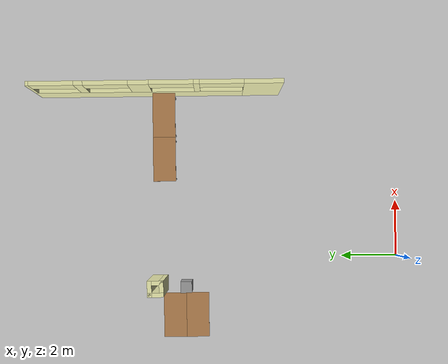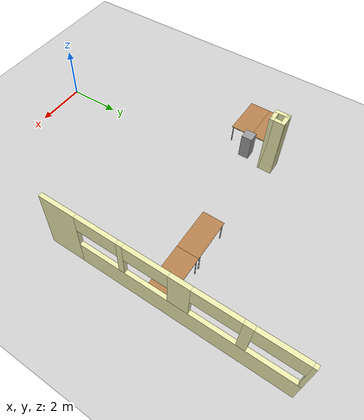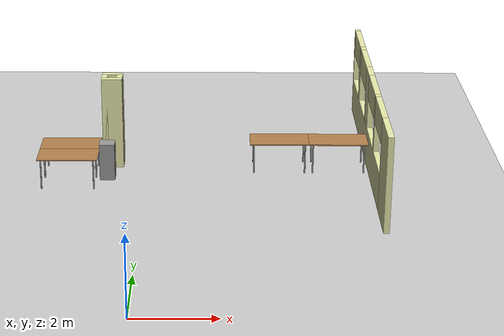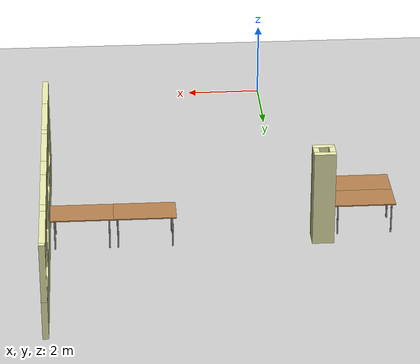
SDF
<sdf version="1.6">
 <world name="default">
  <model name="ground_plane">
   <static>1</static>
   <link name="link">
    <collision name="collision">
     <geometry><plane><normal>0 0 1</normal><size>100 100</size></plane></geometry>
     <surface><friction><ode><mu>100</mu><mu2>50</mu2></ode></friction></surface>
    </collision>
    <visual name="visual">
     <cast_shadows>0</cast_shadows>
     <geometry><plane><normal>0 0 1</normal><size>100 100</size></plane></geometry>
     <material>
      <script><uri>file://media/materials/scripts/gazebo.material</uri><name>Gazebo/Grey</name></script>
     </material>
    </visual>
   </link>
  </model>
  <model name="Building">
   <link name="Wall_34">
    <pose>6 8.58639 0 0 -0 1.5708</pose>
    <visual name="Wall_34_Visual_0">
     <pose>-3.66132 0 1.25 0 -0 0</pose>
     <geometry><box><size>1.32735 0.15 2.5</size></box></geometry>
     <material>
      <script><uri>file://media/materials/scripts/gazebo.material</uri><name>Gazebo/Grey</name></script>
      <ambient>0.92 0.92 0.68 1</ambient>
     </material>
     <meta><layer>0</layer></meta>
    </visual>
    <collision name="Wall_34_Collision_0">
     <geometry><box><size>1.32735 0.15 2.5</size></box></geometry>
     <pose>-3.66132 0 1.25 0 -0 0</pose>
    </collision>
    <visual name="Wall_34_Visual_1">
     <pose>0.663676 0 0.5 0 -0 0</pose>
     <geometry><box><size>7.32265 0.15 1</size></box></geometry>
     <material>
      <script><uri>file://media/materials/scripts/gazebo.material</uri><name>Gazebo/Grey</name></script>
      <ambient>0.92 0.92 0.68 1</ambient>
     </material>
     <meta><layer>0</layer></meta>
    </visual>
    <collision name="Wall_34_Collision_1">
     <geometry><box><size>7.32265 0.15 1</size></box></geometry>
     <pose>0.663676 0 0.5 0 -0 0</pose>
    </collision>
    <visual name="Wall_34_Visual_2">
     <pose>-1.39381 0 1.75 0 -0 0</pose>
     <geometry><box><size>0.207676 0.15 1.5</size></box></geometry>
     <material>
      <script><uri>file://media/materials/scripts/gazebo.material</uri><name>Gazebo/Grey</name></script>
      <ambient>0.92 0.92 0.68 1</ambient>
     </material>
     <meta><layer>0</layer></meta>
    </visual>
    <collision name="Wall_34_Collision_2">
     <geometry><box><size>0.207676 0.15 1.5</size></box></geometry>
     <pose>-1.39381 0 1.75 0 -0 0</pose>
    </collision>
    <visual name="Wall_34_Visual_3">
     <pose>0.560271 0 1.75 0 -0 0</pose>
     <geometry><box><size>0.700485 0.15 1.5</size></box></geometry>
     <material>
      <script><uri>file://media/materials/scripts/gazebo.material</uri><name>Gazebo/Grey</name></script>
      <ambient>0.92 0.92 0.68 1</ambient>
     </material>
     <meta><layer>0</layer></meta>
    </visual>
    <collision name="Wall_34_Collision_3">
     <geometry><box><size>0.700485 0.15 1.5</size></box></geometry>
     <pose>0.560271 0 1.75 0 -0 0</pose>
    </collision>
    <visual name="Wall_34_Visual_4">
     <pose>2.56093 0 1.75 0 -0 0</pose>
     <geometry><box><size>0.300838 0.15 1.5</size></box></geometry>
     <material>
      <script><uri>file://media/materials/scripts/gazebo.material</uri><name>Gazebo/Grey</name></script>
      <ambient>0.92 0.92 0.68 1</ambient>
     </material>
     <meta><layer>0</layer></meta>
    </visual>
    <collision name="Wall_34_Collision_4">
     <geometry><box><size>0.300838 0.15 1.5</size></box></geometry>
     <pose>2.56093 0 1.75 0 -0 0</pose>
    </collision>
    <visual name="Wall_34_Visual_5">
     <pose>4.26818 0 1.75 0 -0 0</pose>
     <geometry><box><size>0.113649 0.15 1.5</size></box></geometry>
     <material>
      <script><uri>file://media/materials/scripts/gazebo.material</uri><name>Gazebo/Grey</name></script>
      <ambient>0.92 0.92 0.68 1</ambient>
     </material>
     <meta><layer>0</layer></meta>
    </visual>
    <collision name="Wall_34_Collision_5">
     <geometry><box><size>0.113649 0.15 1.5</size></box></geometry>
     <pose>4.26818 0 1.75 0 -0 0</pose>
    </collision>
    <visual name="Wall_34_Visual_6">
     <pose>-2.24765 0 2.15 0 -0 0</pose>
     <geometry><box><size>1.5 0.15 0.7</size></box></geometry>
     <material>
      <script><uri>file://media/materials/scripts/gazebo.material</uri><name>Gazebo/Grey</name></script>
      <ambient>0.92 0.92 0.68 1</ambient>
     </material>
     <meta><layer>0</layer></meta>
    </visual>
    <collision name="Wall_34_Collision_6">
     <geometry><box><size>1.5 0.15 0.7</size></box></geometry>
     <pose>-2.24765 0 2.15 0 -0 0</pose>
    </collision>
    <visual name="Wall_34_Visual_7">
     <pose>-0.539971 0 2.15 0 -0 0</pose>
     <geometry><box><size>1.5 0.15 0.7</size></box></geometry>
     <material>
      <script><uri>file://media/materials/scripts/gazebo.material</uri><name>Gazebo/Grey</name></script>
      <ambient>0.92 0.92 0.68 1</ambient>
     </material>
     <meta><layer>0</layer></meta>
    </visual>
    <collision name="Wall_34_Collision_7">
     <geometry><box><size>1.5 0.15 0.7</size></box></geometry>
     <pose>-0.539971 0 2.15 0 -0 0</pose>
    </collision>
    <visual name="Wall_34_Visual_8">
     <pose>1.66051 0 2.15 0 -0 0</pose>
     <geometry><box><size>1.5 0.15 0.7</size></box></geometry>
     <material>
      <script><uri>file://media/materials/scripts/gazebo.material</uri><name>Gazebo/Grey</name></script>
      <ambient>0.92 0.92 0.68 1</ambient>
     </material>
     <meta><layer>0</layer></meta>
    </visual>
    <collision name="Wall_34_Collision_8">
     <geometry><box><size>1.5 0.15 0.7</size></box></geometry>
     <pose>1.66051 0 2.15 0 -0 0</pose>
    </collision>
    <visual name="Wall_34_Visual_9">
     <pose>3.46135 0 2.15 0 -0 0</pose>
     <geometry><box><size>1.5 0.15 0.7</size></box></geometry>
     <material>
      <script><uri>file://media/materials/scripts/gazebo.material</uri><name>Gazebo/Grey</name></script>
      <ambient>0.92 0.92 0.68 1</ambient>
     </material>
     <meta><layer>0</layer></meta>
    </visual>
    <collision name="Wall_34_Collision_9">
     <geometry><box><size>1.5 0.15 0.7</size></box></geometry>
     <pose>3.46135 0 2.15 0 -0 0</pose>
    </collision>
   </link>
   <link name="Wall_63">
    <collision name="Wall_63_Collision">
     <geometry><box><size>0.55 0.15 2.5</size></box></geometry>
     <pose>0 0 1.25 0 -0 0</pose>
    </collision>
    <visual name="Wall_63_Visual">
     <pose>0 0 1.25 0 -0 0</pose>
     <geometry><box><size>0.55 0.15 2.5</size></box></geometry>
     <material>
      <script><uri>file://media/materials/scripts/gazebo.material</uri><name>Gazebo/Grey</name></script>
      <ambient>0.92 0.92 0.68 1</ambient>
     </material>
     <meta><layer>0</layer></meta>
    </visual>
    <pose>-0.9 8.83639 0 0 -0 3.14159</pose>
   </link>
   <link name="Wall_65">
    <collision name="Wall_65_Collision">
     <geometry><box><size>0.55 0.15 2.5</size></box></geometry>
     <pose>0 0 1.25 0 -0 0</pose>
    </collision>
    <visual name="Wall_65_Visual">
     <pose>0 0 1.25 0 -0 0</pose>
     <geometry><box><size>0.55 0.15 2.5</size></box></geometry>
     <material>
      <script><uri>file://media/materials/scripts/gazebo.material</uri><name>Gazebo/Grey</name></script>
      <ambient>0.92 0.92 0.68 1</ambient>
     </material>
     <meta><layer>0</layer></meta>
    </visual>
    <pose>-1.1 8.63639 0 0 0 -1.5708</pose>
   </link>
   <link name="Wall_67">
    <collision name="Wall_67_Collision">
     <geometry><box><size>0.55 0.15 2.5</size></box></geometry>
     <pose>0 0 1.25 0 -0 0</pose>
    </collision>
    <visual name="Wall_67_Visual">
     <pose>0 0 1.25 0 -0 0</pose>
     <geometry><box><size>0.55 0.15 2.5</size></box></geometry>
     <material>
      <script><uri>file://media/materials/scripts/gazebo.material</uri><name>Gazebo/Grey</name></script>
      <ambient>0.92 0.92 0.68 1</ambient>
     </material>
     <meta><layer>0</layer></meta>
    </visual>
    <pose>-0.9 8.43639 0 0 -0 0</pose>
   </link>
   <link name="Wall_69">
    <collision name="Wall_69_Collision">
     <geometry><box><size>0.55 0.15 2.5</size></box></geometry>
     <pose>0 0 1.25 0 -0 0</pose>
    </collision>
    <visual name="Wall_69_Visual">
     <pose>0 0 1.25 0 -0 0</pose>
     <geometry><box><size>0.55 0.15 2.5</size></box></geometry>
     <material>
      <script><uri>file://media/materials/scripts/gazebo.material</uri><name>Gazebo/Grey</name></script>
      <ambient>0.92 0.92 0.68 1</ambient>
     </material>
     <meta><layer>0</layer></meta>
    </visual>
    <pose>-0.7 8.63639 0 0 0 -1.5708</pose>
   </link>
   <static>1</static>
  </model>
  <model name="tablealt_0_clone_0">
   <link name="link">
    <inertial>
     <mass>1</mass>
     <inertia><ixx>1</ixx><ixy>0</ixy><ixz>0</ixz><iyy>1</iyy><iyz>0</iyz><izz>1</izz></inertia>
    </inertial>
    <visual name="back_right_leg">
     <pose>-0.68 -0.38 0.4 0 -0 0</pose>
     <geometry><cylinder><radius>0.02</radius><length>0.8</length></cylinder></geometry>
     <material>
      <script><uri>file://media/materials/scripts/gazebo.material</uri><name>Gazebo/Grey</name></script>
      <shader type="pixel"><normal_map>__default__</normal_map></shader>
      <ambient>0.3 0.3 0.3 1</ambient>
      <diffuse>0.7 0.7 0.7 1</diffuse>
      <specular>0.01 0.01 0.01 1</specular>
      <emissive>0 0 0 1</emissive>
     </material>
    </visual>
    <visual name="back_left_leg">
     <pose>-0.68 0.38 0.4 0 -0 0</pose>
     <geometry><cylinder><radius>0.02</radius><length>0.8</length></cylinder></geometry>
     <material>
      <script><uri>file://media/materials/scripts/gazebo.material</uri><name>Gazebo/Grey</name></script>
      <shader type="pixel"><normal_map>__default__</normal_map></shader>
      <ambient>0.3 0.3 0.3 1</ambient>
      <diffuse>0.7 0.7 0.7 1</diffuse>
      <specular>0.01 0.01 0.01 1</specular>
      <emissive>0 0 0 1</emissive>
     </material>
    </visual>
    <visual name="visual1">
     <pose>0 0 0.8 0 -0 0</pose>
     <geometry><box><size>1.57 0.8 0.03</size></box></geometry>
     <material>
      <script><uri>file://media/materials/scripts/gazebo.material</uri><name>Gazebo/Wood</name></script>
      <shader type="pixel"><normal_map>__default__</normal_map></shader>
      <ambient>0.92 0.92 0.68 1</ambient>
      <diffuse>1 1 1 1</diffuse>
      <specular>0.2 0.2 0.2 1</specular>
      <emissive>0 0 0 1</emissive>
     </material>
    </visual>
    <visual name="front_left_leg">
     <pose>0.68 0.38 0.4 0 -0 0</pose>
     <geometry><cylinder><radius>0.02</radius><length>0.8</length></cylinder></geometry>
     <material>
      <script><uri>file://media/materials/scripts/gazebo.material</uri><name>Gazebo/Grey</name></script>
      <shader type="pixel"><normal_map>__default__</normal_map></shader>
      <ambient>0.3 0.3 0.3 1</ambient>
      <diffuse>0.7 0.7 0.7 1</diffuse>
      <specular>0.01 0.01 0.01 1</specular>
      <emissive>0 0 0 1</emissive>
     </material>
    </visual>
    <visual name="front_right_leg">
     <pose>0.68 -0.38 0.4 0 -0 0</pose>
     <geometry><cylinder><radius>0.02</radius><length>0.8</length></cylinder></geometry>
     <material>
      <script><uri>file://media/materials/scripts/gazebo.material</uri><name>Gazebo/Grey</name></script>
      <shader type="pixel"><normal_map>__default__</normal_map></shader>
      <ambient>0.3 0.3 0.3 1</ambient>
      <diffuse>0.7 0.7 0.7 1</diffuse>
      <specular>0.01 0.01 0.01 1</specular>
      <emissive>0 0 0 1</emissive>
     </material>
    </visual>
    <collision name="front_right_leg">
     <pose>0.68 -0.38 0.4 0 -0 0</pose>
     <geometry><cylinder><radius>0.02</radius><length>0.8</length></cylinder></geometry>
     <surface>
      <friction>
       <ode><mu>1</mu><mu2>1</mu2><fdir1>0 0 0</fdir1><slip1>0</slip1><slip2>0</slip2></ode>
       <torsional>
        <coefficient>1</coefficient>
        <patch_radius>0</patch_radius>
        <surface_radius>0</surface_radius>
        <use_patch_radius>1</use_patch_radius>
        <ode><slip>0</slip></ode>
       </torsional>
      </friction>
      <bounce><restitution_coefficient>0</restitution_coefficient><threshold>1e+06</threshold></bounce>
      <contact>
       <collide_without_contact>0</collide_without_contact>
       <collide_without_contact_bitmask>1</collide_without_contact_bitmask>
       <collide_bitmask>1</collide_bitmask>
       <ode>
        <soft_cfm>0</soft_cfm>
        <soft_erp>0.2</soft_erp>
        <kp>1e+13</kp>
        <kd>1</kd>
        <max_vel>0.01</max_vel>
        <min_depth>0</min_depth>
       </ode>
       <bullet>
        <split_impulse>1</split_impulse>
        <split_impulse_penetration_threshold>-0.01</split_impulse_penetration_threshold>
        <soft_cfm>0</soft_cfm>
        <soft_erp>0.2</soft_erp>
        <kp>1e+13</kp>
        <kd>1</kd>
       </bullet>
      </contact>
     </surface>
    </collision>
    <collision name="surface">
     <pose>0 0 0.8 0 -0 0</pose>
     <geometry><box><size>1.5 0.8 0.03</size></box></geometry>
     <surface>
      <friction>
       <ode><mu>0.6</mu><mu2>0.6</mu2><fdir1>0 0 0</fdir1><slip1>0</slip1><slip2>0</slip2></ode>
       <torsional>
        <coefficient>1</coefficient>
        <patch_radius>0</patch_radius>
        <surface_radius>0</surface_radius>
        <use_patch_radius>1</use_patch_radius>
        <ode><slip>0</slip></ode>
       </torsional>
      </friction>
      <bounce><restitution_coefficient>0</restitution_coefficient><threshold>1e+06</threshold></bounce>
      <contact>
       <collide_without_contact>0</collide_without_contact>
       <collide_without_contact_bitmask>1</collide_without_contact_bitmask>
       <collide_bitmask>1</collide_bitmask>
       <ode>
        <soft_cfm>0</soft_cfm>
        <soft_erp>0.2</soft_erp>
        <kp>1e+13</kp>
        <kd>1</kd>
        <max_vel>0.01</max_vel>
        <min_depth>0</min_depth>
       </ode>
       <bullet>
        <split_impulse>1</split_impulse>
        <split_impulse_penetration_threshold>-0.01</split_impulse_penetration_threshold>
        <soft_cfm>0</soft_cfm>
        <soft_erp>0.2</soft_erp>
        <kp>1e+13</kp>
        <kd>1</kd>
       </bullet>
      </contact>
     </surface>
    </collision>
    <collision name="front_left_leg">
     <pose>0.68 0.38 0.4 0 -0 0</pose>
     <geometry><cylinder><radius>0.02</radius><length>0.8</length></cylinder></geometry>
     <surface>
      <friction>
       <ode><mu>1</mu><mu2>1</mu2><fdir1>0 0 0</fdir1><slip1>0</slip1><slip2>0</slip2></ode>
       <torsional>
        <coefficient>1</coefficient>
        <patch_radius>0</patch_radius>
        <surface_radius>0</surface_radius>
        <use_patch_radius>1</use_patch_radius>
        <ode><slip>0</slip></ode>
       </torsional>
      </friction>
      <bounce><restitution_coefficient>0</restitution_coefficient><threshold>1e+06</threshold></bounce>
      <contact>
       <collide_without_contact>0</collide_without_contact>
       <collide_without_contact_bitmask>1</collide_without_contact_bitmask>
       <collide_bitmask>1</collide_bitmask>
       <ode>
        <soft_cfm>0</soft_cfm>
        <soft_erp>0.2</soft_erp>
        <kp>1e+13</kp>
        <kd>1</kd>
        <max_vel>0.01</max_vel>
        <min_depth>0</min_depth>
       </ode>
       <bullet>
        <split_impulse>1</split_impulse>
        <split_impulse_penetration_threshold>-0.01</split_impulse_penetration_threshold>
        <soft_cfm>0</soft_cfm>
        <soft_erp>0.2</soft_erp>
        <kp>1e+13</kp>
        <kd>1</kd>
       </bullet>
      </contact>
     </surface>
    </collision>
    <collision name="back_left_leg">
     <pose>-0.68 0.38 0.4 0 -0 0</pose>
     <geometry><cylinder><radius>0.02</radius><length>0.8</length></cylinder></geometry>
     <surface>
      <friction>
       <ode><mu>1</mu><mu2>1</mu2><fdir1>0 0 0</fdir1><slip1>0</slip1><slip2>0</slip2></ode>
       <torsional>
        <coefficient>1</coefficient>
        <patch_radius>0</patch_radius>
        <surface_radius>0</surface_radius>
        <use_patch_radius>1</use_patch_radius>
        <ode><slip>0</slip></ode>
       </torsional>
      </friction>
      <bounce><restitution_coefficient>0</restitution_coefficient><threshold>1e+06</threshold></bounce>
      <contact>
       <collide_without_contact>0</collide_without_contact>
       <collide_without_contact_bitmask>1</collide_without_contact_bitmask>
       <collide_bitmask>1</collide_bitmask>
       <ode>
        <soft_cfm>0</soft_cfm>
        <soft_erp>0.2</soft_erp>
        <kp>1e+13</kp>
        <kd>1</kd>
        <max_vel>0.01</max_vel>
        <min_depth>0</min_depth>
       </ode>
       <bullet>
        <split_impulse>1</split_impulse>
        <split_impulse_penetration_threshold>-0.01</split_impulse_penetration_threshold>
        <soft_cfm>0</soft_cfm>
        <soft_erp>0.2</soft_erp>
        <kp>1e+13</kp>
        <kd>1</kd>
       </bullet>
      </contact>
     </surface>
    </collision>
    <collision name="back_right_leg">
     <pose>-0.68 -0.38 0.4 0 -0 0</pose>
     <geometry><cylinder><radius>0.02</radius><length>0.8</length></cylinder></geometry>
     <surface>
      <friction>
       <ode><mu>1</mu><mu2>1</mu2><fdir1>0 0 0</fdir1><slip1>0</slip1><slip2>0</slip2></ode>
       <torsional>
        <coefficient>1</coefficient>
        <patch_radius>0</patch_radius>
        <surface_radius>0</surface_radius>
        <use_patch_radius>1</use_patch_radius>
        <ode><slip>0</slip></ode>
       </torsional>
      </friction>
      <bounce><restitution_coefficient>0</restitution_coefficient><threshold>1e+06</threshold></bounce>
      <contact>
       <collide_without_contact>0</collide_without_contact>
       <collide_without_contact_bitmask>1</collide_without_contact_bitmask>
       <collide_bitmask>1</collide_bitmask>
       <ode>
        <soft_cfm>0</soft_cfm>
        <soft_erp>0.2</soft_erp>
        <kp>1e+13</kp>
        <kd>1</kd>
        <max_vel>0.01</max_vel>
        <min_depth>0</min_depth>
       </ode>
       <bullet>
        <split_impulse>1</split_impulse>
        <split_impulse_penetration_threshold>-0.01</split_impulse_penetration_threshold>
        <soft_cfm>0</soft_cfm>
        <soft_erp>0.2</soft_erp>
        <kp>1e+13</kp>
        <kd>1</kd>
       </bullet>
      </contact>
     </surface>
    </collision>
   </link>
   <static>1</static>
   <pose>-1.99 8.07 0 0 -0 0</pose>
  </model>
  <model name="tablealt_0_clone_2">
   <link name="link">
    <inertial>
     <mass>1</mass>
     <inertia><ixx>1</ixx><ixy>0</ixy><ixz>0</ixz><iyy>1</iyy><iyz>0</iyz><izz>1</izz></inertia>
    </inertial>
    <visual name="back_right_leg">
     <pose>-0.68 -0.38 0.4 0 -0 0</pose>
     <geometry><cylinder><radius>0.02</radius><length>0.8</length></cylinder></geometry>
     <material>
      <script><uri>file://media/materials/scripts/gazebo.material</uri><name>Gazebo/Grey</name></script>
      <shader type="pixel"><normal_map>__default__</normal_map></shader>
      <ambient>0.3 0.3 0.3 1</ambient>
      <diffuse>0.7 0.7 0.7 1</diffuse>
      <specular>0.01 0.01 0.01 1</specular>
      <emissive>0 0 0 1</emissive>
     </material>
    </visual>
    <visual name="back_left_leg">
     <pose>-0.68 0.38 0.4 0 -0 0</pose>
     <geometry><cylinder><radius>0.02</radius><length>0.8</length></cylinder></geometry>
     <material>
      <script><uri>file://media/materials/scripts/gazebo.material</uri><name>Gazebo/Grey</name></script>
      <shader type="pixel"><normal_map>__default__</normal_map></shader>
      <ambient>0.3 0.3 0.3 1</ambient>
      <diffuse>0.7 0.7 0.7 1</diffuse>
      <specular>0.01 0.01 0.01 1</specular>
      <emissive>0 0 0 1</emissive>
     </material>
    </visual>
    <visual name="visual1">
     <pose>0 0 0.8 0 -0 0</pose>
     <geometry><box><size>1.57 0.8 0.03</size></box></geometry>
     <material>
      <script><uri>file://media/materials/scripts/gazebo.material</uri><name>Gazebo/Wood</name></script>
      <shader type="pixel"><normal_map>__default__</normal_map></shader>
      <ambient>0.92 0.92 0.68 1</ambient>
      <diffuse>1 1 1 1</diffuse>
      <specular>0.2 0.2 0.2 1</specular>
      <emissive>0 0 0 1</emissive>
     </material>
    </visual>
    <visual name="front_left_leg">
     <pose>0.68 0.38 0.4 0 -0 0</pose>
     <geometry><cylinder><radius>0.02</radius><length>0.8</length></cylinder></geometry>
     <material>
      <script><uri>file://media/materials/scripts/gazebo.material</uri><name>Gazebo/Grey</name></script>
      <shader type="pixel"><normal_map>__default__</normal_map></shader>
      <ambient>0.3 0.3 0.3 1</ambient>
      <diffuse>0.7 0.7 0.7 1</diffuse>
      <specular>0.01 0.01 0.01 1</specular>
      <emissive>0 0 0 1</emissive>
     </material>
    </visual>
    <visual name="front_right_leg">
     <pose>0.68 -0.38 0.4 0 -0 0</pose>
     <geometry><cylinder><radius>0.02</radius><length>0.8</length></cylinder></geometry>
     <material>
      <script><uri>file://media/materials/scripts/gazebo.material</uri><name>Gazebo/Grey</name></script>
      <shader type="pixel"><normal_map>__default__</normal_map></shader>
      <ambient>0.3 0.3 0.3 1</ambient>
      <diffuse>0.7 0.7 0.7 1</diffuse>
      <specular>0.01 0.01 0.01 1</specular>
      <emissive>0 0 0 1</emissive>
     </material>
    </visual>
    <collision name="front_right_leg">
     <pose>0.68 -0.38 0.4 0 -0 0</pose>
     <geometry><cylinder><radius>0.02</radius><length>0.8</length></cylinder></geometry>
     <surface>
      <friction>
       <ode><mu>1</mu><mu2>1</mu2><fdir1>0 0 0</fdir1><slip1>0</slip1><slip2>0</slip2></ode>
       <torsional>
        <coefficient>1</coefficient>
        <patch_radius>0</patch_radius>
        <surface_radius>0</surface_radius>
        <use_patch_radius>1</use_patch_radius>
        <ode><slip>0</slip></ode>
       </torsional>
      </friction>
      <bounce><restitution_coefficient>0</restitution_coefficient><threshold>1e+06</threshold></bounce>
      <contact>
       <collide_without_contact>0</collide_without_contact>
       <collide_without_contact_bitmask>1</collide_without_contact_bitmask>
       <collide_bitmask>1</collide_bitmask>
       <ode>
        <soft_cfm>0</soft_cfm>
        <soft_erp>0.2</soft_erp>
        <kp>1e+13</kp>
        <kd>1</kd>
        <max_vel>0.01</max_vel>
        <min_depth>0</min_depth>
       </ode>
       <bullet>
        <split_impulse>1</split_impulse>
        <split_impulse_penetration_threshold>-0.01</split_impulse_penetration_threshold>
        <soft_cfm>0</soft_cfm>
        <soft_erp>0.2</soft_erp>
        <kp>1e+13</kp>
        <kd>1</kd>
       </bullet>
      </contact>
     </surface>
    </collision>
    <collision name="surface">
     <pose>0 0 0.8 0 -0 0</pose>
     <geometry><box><size>1.5 0.8 0.03</size></box></geometry>
     <surface>
      <friction>
       <ode><mu>0.6</mu><mu2>0.6</mu2><fdir1>0 0 0</fdir1><slip1>0</slip1><slip2>0</slip2></ode>
       <torsional>
        <coefficient>1</coefficient>
        <patch_radius>0</patch_radius>
        <surface_radius>0</surface_radius>
        <use_patch_radius>1</use_patch_radius>
        <ode><slip>0</slip></ode>
       </torsional>
      </friction>
      <bounce><restitution_coefficient>0</restitution_coefficient><threshold>1e+06</threshold></bounce>
      <contact>
       <collide_without_contact>0</collide_without_contact>
       <collide_without_contact_bitmask>1</collide_without_contact_bitmask>
       <collide_bitmask>1</collide_bitmask>
       <ode>
        <soft_cfm>0</soft_cfm>
        <soft_erp>0.2</soft_erp>
        <kp>1e+13</kp>
        <kd>1</kd>
        <max_vel>0.01</max_vel>
        <min_depth>0</min_depth>
       </ode>
       <bullet>
        <split_impulse>1</split_impulse>
        <split_impulse_penetration_threshold>-0.01</split_impulse_penetration_threshold>
        <soft_cfm>0</soft_cfm>
        <soft_erp>0.2</soft_erp>
        <kp>1e+13</kp>
        <kd>1</kd>
       </bullet>
      </contact>
     </surface>
    </collision>
    <collision name="front_left_leg">
     <pose>0.68 0.38 0.4 0 -0 0</pose>
     <geometry><cylinder><radius>0.02</radius><length>0.8</length></cylinder></geometry>
     <surface>
      <friction>
       <ode><mu>1</mu><mu2>1</mu2><fdir1>0 0 0</fdir1><slip1>0</slip1><slip2>0</slip2></ode>
       <torsional>
        <coefficient>1</coefficient>
        <patch_radius>0</patch_radius>
        <surface_radius>0</surface_radius>
        <use_patch_radius>1</use_patch_radius>
        <ode><slip>0</slip></ode>
       </torsional>
      </friction>
      <bounce><restitution_coefficient>0</restitution_coefficient><threshold>1e+06</threshold></bounce>
      <contact>
       <collide_without_contact>0</collide_without_contact>
       <collide_without_contact_bitmask>1</collide_without_contact_bitmask>
       <collide_bitmask>1</collide_bitmask>
       <ode>
        <soft_cfm>0</soft_cfm>
        <soft_erp>0.2</soft_erp>
        <kp>1e+13</kp>
        <kd>1</kd>
        <max_vel>0.01</max_vel>
        <min_depth>0</min_depth>
       </ode>
       <bullet>
        <split_impulse>1</split_impulse>
        <split_impulse_penetration_threshold>-0.01</split_impulse_penetration_threshold>
        <soft_cfm>0</soft_cfm>
        <soft_erp>0.2</soft_erp>
        <kp>1e+13</kp>
        <kd>1</kd>
       </bullet>
      </contact>
     </surface>
    </collision>
    <collision name="back_left_leg">
     <pose>-0.68 0.38 0.4 0 -0 0</pose>
     <geometry><cylinder><radius>0.02</radius><length>0.8</length></cylinder></geometry>
     <surface>
      <friction>
       <ode><mu>1</mu><mu2>1</mu2><fdir1>0 0 0</fdir1><slip1>0</slip1><slip2>0</slip2></ode>
       <torsional>
        <coefficient>1</coefficient>
        <patch_radius>0</patch_radius>
        <surface_radius>0</surface_radius>
        <use_patch_radius>1</use_patch_radius>
        <ode><slip>0</slip></ode>
       </torsional>
      </friction>
      <bounce><restitution_coefficient>0</restitution_coefficient><threshold>1e+06</threshold></bounce>
      <contact>
       <collide_without_contact>0</collide_without_contact>
       <collide_without_contact_bitmask>1</collide_without_contact_bitmask>
       <collide_bitmask>1</collide_bitmask>
       <ode>
        <soft_cfm>0</soft_cfm>
        <soft_erp>0.2</soft_erp>
        <kp>1e+13</kp>
        <kd>1</kd>
        <max_vel>0.01</max_vel>
        <min_depth>0</min_depth>
       </ode>
       <bullet>
        <split_impulse>1</split_impulse>
        <split_impulse_penetration_threshold>-0.01</split_impulse_penetration_threshold>
        <soft_cfm>0</soft_cfm>
        <soft_erp>0.2</soft_erp>
        <kp>1e+13</kp>
        <kd>1</kd>
       </bullet>
      </contact>
     </surface>
    </collision>
    <collision name="back_right_leg">
     <pose>-0.68 -0.38 0.4 0 -0 0</pose>
     <geometry><cylinder><radius>0.02</radius><length>0.8</length></cylinder></geometry>
     <surface>
      <friction>
       <ode><mu>1</mu><mu2>1</mu2><fdir1>0 0 0</fdir1><slip1>0</slip1><slip2>0</slip2></ode>
       <torsional>
        <coefficient>1</coefficient>
        <patch_radius>0</patch_radius>
        <surface_radius>0</surface_radius>
        <use_patch_radius>1</use_patch_radius>
        <ode><slip>0</slip></ode>
       </torsional>
      </friction>
      <bounce><restitution_coefficient>0</restitution_coefficient><threshold>1e+06</threshold></bounce>
      <contact>
       <collide_without_contact>0</collide_without_contact>
       <collide_without_contact_bitmask>1</collide_without_contact_bitmask>
       <collide_bitmask>1</collide_bitmask>
       <ode>
        <soft_cfm>0</soft_cfm>
        <soft_erp>0.2</soft_erp>
        <kp>1e+13</kp>
        <kd>1</kd>
        <max_vel>0.01</max_vel>
        <min_depth>0</min_depth>
       </ode>
       <bullet>
        <split_impulse>1</split_impulse>
        <split_impulse_penetration_threshold>-0.01</split_impulse_penetration_threshold>
        <soft_cfm>0</soft_cfm>
        <soft_erp>0.2</soft_erp>
        <kp>1e+13</kp>
        <kd>1</kd>
       </bullet>
      </contact>
     </surface>
    </collision>
   </link>
   <static>1</static>
   <pose>-1.99 7.27 0 0 -0 0</pose>
  </model>
  <model name="tablealt_0_clone_12">
   <link name="link">
    <inertial>
     <mass>1</mass>
     <inertia><ixx>1</ixx><ixy>0</ixy><ixz>0</ixz><iyy>1</iyy><iyz>0</iyz><izz>1</izz></inertia>
    </inertial>
    <visual name="back_right_leg">
     <pose>-0.68 -0.38 0.4 0 -0 0</pose>
     <geometry><cylinder><radius>0.02</radius><length>0.8</length></cylinder></geometry>
     <material>
      <script><uri>file://media/materials/scripts/gazebo.material</uri><name>Gazebo/Grey</name></script>
      <shader type="pixel"><normal_map>__default__</normal_map></shader>
      <ambient>0.3 0.3 0.3 1</ambient>
      <diffuse>0.7 0.7 0.7 1</diffuse>
      <specular>0.01 0.01 0.01 1</specular>
      <emissive>0 0 0 1</emissive>
     </material>
    </visual>
    <visual name="back_left_leg">
     <pose>-0.68 0.38 0.4 0 -0 0</pose>
     <geometry><cylinder><radius>0.02</radius><length>0.8</length></cylinder></geometry>
     <material>
      <script><uri>file://media/materials/scripts/gazebo.material</uri><name>Gazebo/Grey</name></script>
      <shader type="pixel"><normal_map>__default__</normal_map></shader>
      <ambient>0.3 0.3 0.3 1</ambient>
      <diffuse>0.7 0.7 0.7 1</diffuse>
      <specular>0.01 0.01 0.01 1</specular>
      <emissive>0 0 0 1</emissive>
     </material>
    </visual>
    <visual name="visual1">
     <pose>0 0 0.8 0 -0 0</pose>
     <geometry><box><size>1.57 0.8 0.03</size></box></geometry>
     <material>
      <script><uri>file://media/materials/scripts/gazebo.material</uri><name>Gazebo/Wood</name></script>
      <shader type="pixel"><normal_map>__default__</normal_map></shader>
      <ambient>0.92 0.92 0.68 1</ambient>
      <diffuse>1 1 1 1</diffuse>
      <specular>0.2 0.2 0.2 1</specular>
      <emissive>0 0 0 1</emissive>
     </material>
    </visual>
    <visual name="front_left_leg">
     <pose>0.68 0.38 0.4 0 -0 0</pose>
     <geometry><cylinder><radius>0.02</radius><length>0.8</length></cylinder></geometry>
     <material>
      <script><uri>file://media/materials/scripts/gazebo.material</uri><name>Gazebo/Grey</name></script>
      <shader type="pixel"><normal_map>__default__</normal_map></shader>
      <ambient>0.3 0.3 0.3 1</ambient>
      <diffuse>0.7 0.7 0.7 1</diffuse>
      <specular>0.01 0.01 0.01 1</specular>
      <emissive>0 0 0 1</emissive>
     </material>
    </visual>
    <visual name="front_right_leg">
     <pose>0.68 -0.38 0.4 0 -0 0</pose>
     <geometry><cylinder><radius>0.02</radius><length>0.8</length></cylinder></geometry>
     <material>
      <script><uri>file://media/materials/scripts/gazebo.material</uri><name>Gazebo/Grey</name></script>
      <shader type="pixel"><normal_map>__default__</normal_map></shader>
      <ambient>0.3 0.3 0.3 1</ambient>
      <diffuse>0.7 0.7 0.7 1</diffuse>
      <specular>0.01 0.01 0.01 1</specular>
      <emissive>0 0 0 1</emissive>
     </material>
    </visual>
    <collision name="front_right_leg">
     <pose>0.68 -0.38 0.4 0 -0 0</pose>
     <geometry><cylinder><radius>0.02</radius><length>0.8</length></cylinder></geometry>
     <surface>
      <friction>
       <ode><mu>1</mu><mu2>1</mu2><fdir1>0 0 0</fdir1><slip1>0</slip1><slip2>0</slip2></ode>
       <torsional>
        <coefficient>1</coefficient>
        <patch_radius>0</patch_radius>
        <surface_radius>0</surface_radius>
        <use_patch_radius>1</use_patch_radius>
        <ode><slip>0</slip></ode>
       </torsional>
      </friction>
      <bounce><restitution_coefficient>0</restitution_coefficient><threshold>1e+06</threshold></bounce>
      <contact>
       <collide_without_contact>0</collide_without_contact>
       <collide_without_contact_bitmask>1</collide_without_contact_bitmask>
       <collide_bitmask>1</collide_bitmask>
       <ode>
        <soft_cfm>0</soft_cfm>
        <soft_erp>0.2</soft_erp>
        <kp>1e+13</kp>
        <kd>1</kd>
        <max_vel>0.01</max_vel>
        <min_depth>0</min_depth>
       </ode>
       <bullet>
        <split_impulse>1</split_impulse>
        <split_impulse_penetration_threshold>-0.01</split_impulse_penetration_threshold>
        <soft_cfm>0</soft_cfm>
        <soft_erp>0.2</soft_erp>
        <kp>1e+13</kp>
        <kd>1</kd>
       </bullet>
      </contact>
     </surface>
    </collision>
    <collision name="surface">
     <pose>0 0 0.8 0 -0 0</pose>
     <geometry><box><size>1.5 0.8 0.03</size></box></geometry>
     <surface>
      <friction>
       <ode><mu>0.6</mu><mu2>0.6</mu2><fdir1>0 0 0</fdir1><slip1>0</slip1><slip2>0</slip2></ode>
       <torsional>
        <coefficient>1</coefficient>
        <patch_radius>0</patch_radius>
        <surface_radius>0</surface_radius>
        <use_patch_radius>1</use_patch_radius>
        <ode><slip>0</slip></ode>
       </torsional>
      </friction>
      <bounce><restitution_coefficient>0</restitution_coefficient><threshold>1e+06</threshold></bounce>
      <contact>
       <collide_without_contact>0</collide_without_contact>
       <collide_without_contact_bitmask>1</collide_without_contact_bitmask>
       <collide_bitmask>1</collide_bitmask>
       <ode>
        <soft_cfm>0</soft_cfm>
        <soft_erp>0.2</soft_erp>
        <kp>1e+13</kp>
        <kd>1</kd>
        <max_vel>0.01</max_vel>
        <min_depth>0</min_depth>
       </ode>
       <bullet>
        <split_impulse>1</split_impulse>
        <split_impulse_penetration_threshold>-0.01</split_impulse_penetration_threshold>
        <soft_cfm>0</soft_cfm>
        <soft_erp>0.2</soft_erp>
        <kp>1e+13</kp>
        <kd>1</kd>
       </bullet>
      </contact>
     </surface>
    </collision>
    <collision name="front_left_leg">
     <pose>0.68 0.38 0.4 0 -0 0</pose>
     <geometry><cylinder><radius>0.02</radius><length>0.8</length></cylinder></geometry>
     <surface>
      <friction>
       <ode><mu>1</mu><mu2>1</mu2><fdir1>0 0 0</fdir1><slip1>0</slip1><slip2>0</slip2></ode>
       <torsional>
        <coefficient>1</coefficient>
        <patch_radius>0</patch_radius>
        <surface_radius>0</surface_radius>
        <use_patch_radius>1</use_patch_radius>
        <ode><slip>0</slip></ode>
       </torsional>
      </friction>
      <bounce><restitution_coefficient>0</restitution_coefficient><threshold>1e+06</threshold></bounce>
      <contact>
       <collide_without_contact>0</collide_without_contact>
       <collide_without_contact_bitmask>1</collide_without_contact_bitmask>
       <collide_bitmask>1</collide_bitmask>
       <ode>
        <soft_cfm>0</soft_cfm>
        <soft_erp>0.2</soft_erp>
        <kp>1e+13</kp>
        <kd>1</kd>
        <max_vel>0.01</max_vel>
        <min_depth>0</min_depth>
       </ode>
       <bullet>
        <split_impulse>1</split_impulse>
        <split_impulse_penetration_threshold>-0.01</split_impulse_penetration_threshold>
        <soft_cfm>0</soft_cfm>
        <soft_erp>0.2</soft_erp>
        <kp>1e+13</kp>
        <kd>1</kd>
       </bullet>
      </contact>
     </surface>
    </collision>
    <collision name="back_left_leg">
     <pose>-0.68 0.38 0.4 0 -0 0</pose>
     <geometry><cylinder><radius>0.02</radius><length>0.8</length></cylinder></geometry>
     <surface>
      <friction>
       <ode><mu>1</mu><mu2>1</mu2><fdir1>0 0 0</fdir1><slip1>0</slip1><slip2>0</slip2></ode>
       <torsional>
        <coefficient>1</coefficient>
        <patch_radius>0</patch_radius>
        <surface_radius>0</surface_radius>
        <use_patch_radius>1</use_patch_radius>
        <ode><slip>0</slip></ode>
       </torsional>
      </friction>
      <bounce><restitution_coefficient>0</restitution_coefficient><threshold>1e+06</threshold></bounce>
      <contact>
       <collide_without_contact>0</collide_without_contact>
       <collide_without_contact_bitmask>1</collide_without_contact_bitmask>
       <collide_bitmask>1</collide_bitmask>
       <ode>
        <soft_cfm>0</soft_cfm>
        <soft_erp>0.2</soft_erp>
        <kp>1e+13</kp>
        <kd>1</kd>
        <max_vel>0.01</max_vel>
        <min_depth>0</min_depth>
       </ode>
       <bullet>
        <split_impulse>1</split_impulse>
        <split_impulse_penetration_threshold>-0.01</split_impulse_penetration_threshold>
        <soft_cfm>0</soft_cfm>
        <soft_erp>0.2</soft_erp>
        <kp>1e+13</kp>
        <kd>1</kd>
       </bullet>
      </contact>
     </surface>
    </collision>
    <collision name="back_right_leg">
     <pose>-0.68 -0.38 0.4 0 -0 0</pose>
     <geometry><cylinder><radius>0.02</radius><length>0.8</length></cylinder></geometry>
     <surface>
      <friction>
       <ode><mu>1</mu><mu2>1</mu2><fdir1>0 0 0</fdir1><slip1>0</slip1><slip2>0</slip2></ode>
       <torsional>
        <coefficient>1</coefficient>
        <patch_radius>0</patch_radius>
        <surface_radius>0</surface_radius>
        <use_patch_radius>1</use_patch_radius>
        <ode><slip>0</slip></ode>
       </torsional>
      </friction>
      <bounce><restitution_coefficient>0</restitution_coefficient><threshold>1e+06</threshold></bounce>
      <contact>
       <collide_without_contact>0</collide_without_contact>
       <collide_without_contact_bitmask>1</collide_without_contact_bitmask>
       <collide_bitmask>1</collide_bitmask>
       <ode>
        <soft_cfm>0</soft_cfm>
        <soft_erp>0.2</soft_erp>
        <kp>1e+13</kp>
        <kd>1</kd>
        <max_vel>0.01</max_vel>
        <min_depth>0</min_depth>
       </ode>
       <bullet>
        <split_impulse>1</split_impulse>
        <split_impulse_penetration_threshold>-0.01</split_impulse_penetration_threshold>
        <soft_cfm>0</soft_cfm>
        <soft_erp>0.2</soft_erp>
        <kp>1e+13</kp>
        <kd>1</kd>
       </bullet>
      </contact>
     </surface>
    </collision>
   </link>
   <static>1</static>
   <pose>3.55 8.4 0 0 -0 0</pose>
  </model>
  <model name="tablealt_0_clone_13">
   <link name="link">
    <inertial>
     <mass>1</mass>
     <inertia><ixx>1</ixx><ixy>0</ixy><ixz>0</ixz><iyy>1</iyy><iyz>0</iyz><izz>1</izz></inertia>
    </inertial>
    <visual name="back_right_leg">
     <pose>-0.68 -0.38 0.4 0 -0 0</pose>
     <geometry><cylinder><radius>0.02</radius><length>0.8</length></cylinder></geometry>
     <material>
      <script><uri>file://media/materials/scripts/gazebo.material</uri><name>Gazebo/Grey</name></script>
      <shader type="pixel"><normal_map>__default__</normal_map></shader>
      <ambient>0.3 0.3 0.3 1</ambient>
      <diffuse>0.7 0.7 0.7 1</diffuse>
      <specular>0.01 0.01 0.01 1</specular>
      <emissive>0 0 0 1</emissive>
     </material>
    </visual>
    <visual name="back_left_leg">
     <pose>-0.68 0.38 0.4 0 -0 0</pose>
     <geometry><cylinder><radius>0.02</radius><length>0.8</length></cylinder></geometry>
     <material>
      <script><uri>file://media/materials/scripts/gazebo.material</uri><name>Gazebo/Grey</name></script>
      <shader type="pixel"><normal_map>__default__</normal_map></shader>
      <ambient>0.3 0.3 0.3 1</ambient>
      <diffuse>0.7 0.7 0.7 1</diffuse>
      <specular>0.01 0.01 0.01 1</specular>
      <emissive>0 0 0 1</emissive>
     </material>
    </visual>
    <visual name="visual1">
     <pose>0 0 0.8 0 -0 0</pose>
     <geometry><box><size>1.57 0.8 0.03</size></box></geometry>
     <material>
      <script><uri>file://media/materials/scripts/gazebo.material</uri><name>Gazebo/Wood</name></script>
      <shader type="pixel"><normal_map>__default__</normal_map></shader>
      <ambient>0.92 0.92 0.68 1</ambient>
      <diffuse>1 1 1 1</diffuse>
      <specular>0.2 0.2 0.2 1</specular>
      <emissive>0 0 0 1</emissive>
     </material>
    </visual>
    <visual name="front_left_leg">
     <pose>0.68 0.38 0.4 0 -0 0</pose>
     <geometry><cylinder><radius>0.02</radius><length>0.8</length></cylinder></geometry>
     <material>
      <script><uri>file://media/materials/scripts/gazebo.material</uri><name>Gazebo/Grey</name></script>
      <shader type="pixel"><normal_map>__default__</normal_map></shader>
      <ambient>0.3 0.3 0.3 1</ambient>
      <diffuse>0.7 0.7 0.7 1</diffuse>
      <specular>0.01 0.01 0.01 1</specular>
      <emissive>0 0 0 1</emissive>
     </material>
    </visual>
    <visual name="front_right_leg">
     <pose>0.68 -0.38 0.4 0 -0 0</pose>
     <geometry><cylinder><radius>0.02</radius><length>0.8</length></cylinder></geometry>
     <material>
      <script><uri>file://media/materials/scripts/gazebo.material</uri><name>Gazebo/Grey</name></script>
      <shader type="pixel"><normal_map>__default__</normal_map></shader>
      <ambient>0.3 0.3 0.3 1</ambient>
      <diffuse>0.7 0.7 0.7 1</diffuse>
      <specular>0.01 0.01 0.01 1</specular>
      <emissive>0 0 0 1</emissive>
     </material>
    </visual>
    <collision name="front_right_leg">
     <pose>0.68 -0.38 0.4 0 -0 0</pose>
     <geometry><cylinder><radius>0.02</radius><length>0.8</length></cylinder></geometry>
     <surface>
      <friction>
       <ode><mu>1</mu><mu2>1</mu2><fdir1>0 0 0</fdir1><slip1>0</slip1><slip2>0</slip2></ode>
       <torsional>
        <coefficient>1</coefficient>
        <patch_radius>0</patch_radius>
        <surface_radius>0</surface_radius>
        <use_patch_radius>1</use_patch_radius>
        <ode><slip>0</slip></ode>
       </torsional>
      </friction>
      <bounce><restitution_coefficient>0</restitution_coefficient><threshold>1e+06</threshold></bounce>
      <contact>
       <collide_without_contact>0</collide_without_contact>
       <collide_without_contact_bitmask>1</collide_without_contact_bitmask>
       <collide_bitmask>1</collide_bitmask>
       <ode>
        <soft_cfm>0</soft_cfm>
        <soft_erp>0.2</soft_erp>
        <kp>1e+13</kp>
        <kd>1</kd>
        <max_vel>0.01</max_vel>
        <min_depth>0</min_depth>
       </ode>
       <bullet>
        <split_impulse>1</split_impulse>
        <split_impulse_penetration_threshold>-0.01</split_impulse_penetration_threshold>
        <soft_cfm>0</soft_cfm>
        <soft_erp>0.2</soft_erp>
        <kp>1e+13</kp>
        <kd>1</kd>
       </bullet>
      </contact>
     </surface>
    </collision>
    <collision name="surface">
     <pose>0 0 0.8 0 -0 0</pose>
     <geometry><box><size>1.5 0.8 0.03</size></box></geometry>
     <surface>
      <friction>
       <ode><mu>0.6</mu><mu2>0.6</mu2><fdir1>0 0 0</fdir1><slip1>0</slip1><slip2>0</slip2></ode>
       <torsional>
        <coefficient>1</coefficient>
        <patch_radius>0</patch_radius>
        <surface_radius>0</surface_radius>
        <use_patch_radius>1</use_patch_radius>
        <ode><slip>0</slip></ode>
       </torsional>
      </friction>
      <bounce><restitution_coefficient>0</restitution_coefficient><threshold>1e+06</threshold></bounce>
      <contact>
       <collide_without_contact>0</collide_without_contact>
       <collide_without_contact_bitmask>1</collide_without_contact_bitmask>
       <collide_bitmask>1</collide_bitmask>
       <ode>
        <soft_cfm>0</soft_cfm>
        <soft_erp>0.2</soft_erp>
        <kp>1e+13</kp>
        <kd>1</kd>
        <max_vel>0.01</max_vel>
        <min_depth>0</min_depth>
       </ode>
       <bullet>
        <split_impulse>1</split_impulse>
        <split_impulse_penetration_threshold>-0.01</split_impulse_penetration_threshold>
        <soft_cfm>0</soft_cfm>
        <soft_erp>0.2</soft_erp>
        <kp>1e+13</kp>
        <kd>1</kd>
       </bullet>
      </contact>
     </surface>
    </collision>
    <collision name="front_left_leg">
     <pose>0.68 0.38 0.4 0 -0 0</pose>
     <geometry><cylinder><radius>0.02</radius><length>0.8</length></cylinder></geometry>
     <surface>
      <friction>
       <ode><mu>1</mu><mu2>1</mu2><fdir1>0 0 0</fdir1><slip1>0</slip1><slip2>0</slip2></ode>
       <torsional>
        <coefficient>1</coefficient>
        <patch_radius>0</patch_radius>
        <surface_radius>0</surface_radius>
        <use_patch_radius>1</use_patch_radius>
        <ode><slip>0</slip></ode>
       </torsional>
      </friction>
      <bounce><restitution_coefficient>0</restitution_coefficient><threshold>1e+06</threshold></bounce>
      <contact>
       <collide_without_contact>0</collide_without_contact>
       <collide_without_contact_bitmask>1</collide_without_contact_bitmask>
       <collide_bitmask>1</collide_bitmask>
       <ode>
        <soft_cfm>0</soft_cfm>
        <soft_erp>0.2</soft_erp>
        <kp>1e+13</kp>
        <kd>1</kd>
        <max_vel>0.01</max_vel>
        <min_depth>0</min_depth>
       </ode>
       <bullet>
        <split_impulse>1</split_impulse>
        <split_impulse_penetration_threshold>-0.01</split_impulse_penetration_threshold>
        <soft_cfm>0</soft_cfm>
        <soft_erp>0.2</soft_erp>
        <kp>1e+13</kp>
        <kd>1</kd>
       </bullet>
      </contact>
     </surface>
    </collision>
    <collision name="back_left_leg">
     <pose>-0.68 0.38 0.4 0 -0 0</pose>
     <geometry><cylinder><radius>0.02</radius><length>0.8</length></cylinder></geometry>
     <surface>
      <friction>
       <ode><mu>1</mu><mu2>1</mu2><fdir1>0 0 0</fdir1><slip1>0</slip1><slip2>0</slip2></ode>
       <torsional>
        <coefficient>1</coefficient>
        <patch_radius>0</patch_radius>
        <surface_radius>0</surface_radius>
        <use_patch_radius>1</use_patch_radius>
        <ode><slip>0</slip></ode>
       </torsional>
      </friction>
      <bounce><restitution_coefficient>0</restitution_coefficient><threshold>1e+06</threshold></bounce>
      <contact>
       <collide_without_contact>0</collide_without_contact>
       <collide_without_contact_bitmask>1</collide_without_contact_bitmask>
       <collide_bitmask>1</collide_bitmask>
       <ode>
        <soft_cfm>0</soft_cfm>
        <soft_erp>0.2</soft_erp>
        <kp>1e+13</kp>
        <kd>1</kd>
        <max_vel>0.01</max_vel>
        <min_depth>0</min_depth>
       </ode>
       <bullet>
        <split_impulse>1</split_impulse>
        <split_impulse_penetration_threshold>-0.01</split_impulse_penetration_threshold>
        <soft_cfm>0</soft_cfm>
        <soft_erp>0.2</soft_erp>
        <kp>1e+13</kp>
        <kd>1</kd>
       </bullet>
      </contact>
     </surface>
    </collision>
    <collision name="back_right_leg">
     <pose>-0.68 -0.38 0.4 0 -0 0</pose>
     <geometry><cylinder><radius>0.02</radius><length>0.8</length></cylinder></geometry>
     <surface>
      <friction>
       <ode><mu>1</mu><mu2>1</mu2><fdir1>0 0 0</fdir1><slip1>0</slip1><slip2>0</slip2></ode>
       <torsional>
        <coefficient>1</coefficient>
        <patch_radius>0</patch_radius>
        <surface_radius>0</surface_radius>
        <use_patch_radius>1</use_patch_radius>
        <ode><slip>0</slip></ode>
       </torsional>
      </friction>
      <bounce><restitution_coefficient>0</restitution_coefficient><threshold>1e+06</threshold></bounce>
      <contact>
       <collide_without_contact>0</collide_without_contact>
       <collide_without_contact_bitmask>1</collide_without_contact_bitmask>
       <collide_bitmask>1</collide_bitmask>
       <ode>
        <soft_cfm>0</soft_cfm>
        <soft_erp>0.2</soft_erp>
        <kp>1e+13</kp>
        <kd>1</kd>
        <max_vel>0.01</max_vel>
        <min_depth>0</min_depth>
       </ode>
       <bullet>
        <split_impulse>1</split_impulse>
        <split_impulse_penetration_threshold>-0.01</split_impulse_penetration_threshold>
        <soft_cfm>0</soft_cfm>
        <soft_erp>0.2</soft_erp>
        <kp>1e+13</kp>
        <kd>1</kd>
       </bullet>
      </contact>
     </surface>
    </collision>
   </link>
   <static>1</static>
   <pose>5.12 8.4 0 0 -0 0</pose>
  </model>
  <model name="plantbox">
   <link name="link_0">
    <inertial>
     <mass>1</mass>
     <inertia>
      <ixx>0.166667</ixx>
      <ixy>0</ixy>
      <ixz>0</ixz>
      <iyy>0.166667</iyy>
      <iyz>0</iyz>
      <izz>0.166667</izz>
     </inertia>
    </inertial>
    <visual name="visual">
     <geometry><box><size>0.4 0.4 1</size></box></geometry>
     <material>
      <lighting>1</lighting>
      <script><uri>file://media/materials/scripts/gazebo.material</uri><name>Gazebo/Grey</name></script>
      <shader type="pixel"><normal_map>__default__</normal_map></shader>
      <ambient>0.3 0.3 0.3 1</ambient>
      <diffuse>0.92 0.92 0.92 1</diffuse>
      <specular>0.92 0.92 0.92 1</specular>
      <emissive>0 0 0 1</emissive>
     </material>
    </visual>
    <collision name="collision">
     <geometry><box><size>0.4 0.4 1</size></box></geometry>
     <surface>
      <friction>
       <ode><mu>1</mu><mu2>1</mu2><fdir1>0 0 0</fdir1><slip1>0</slip1><slip2>0</slip2></ode>
       <torsional>
        <coefficient>1</coefficient>
        <patch_radius>0</patch_radius>
        <surface_radius>0</surface_radius>
        <use_patch_radius>1</use_patch_radius>
        <ode><slip>0</slip></ode>
       </torsional>
      </friction>
      <bounce><restitution_coefficient>0</restitution_coefficient><threshold>1e+06</threshold></bounce>
      <contact>
       <collide_without_contact>0</collide_without_contact>
       <collide_without_contact_bitmask>1</collide_without_contact_bitmask>
       <collide_bitmask>1</collide_bitmask>
       <ode>
        <soft_cfm>0</soft_cfm>
        <soft_erp>0.2</soft_erp>
        <kp>1e+13</kp>
        <kd>1</kd>
        <max_vel>0.01</max_vel>
        <min_depth>0</min_depth>
       </ode>
       <bullet>
        <split_impulse>1</split_impulse>
        <split_impulse_penetration_threshold>-0.01</split_impulse_penetration_threshold>
        <soft_cfm>0</soft_cfm>
        <soft_erp>0.2</soft_erp>
        <kp>1e+13</kp>
        <kd>1</kd>
       </bullet>
      </contact>
     </surface>
    </collision>
   </link>
   <static>0</static>
   <pose>-0.999994 7.67 0.500001 -1e-06 -3e-06 9e-05</pose>
  </model>
 </world>
</sdf>
